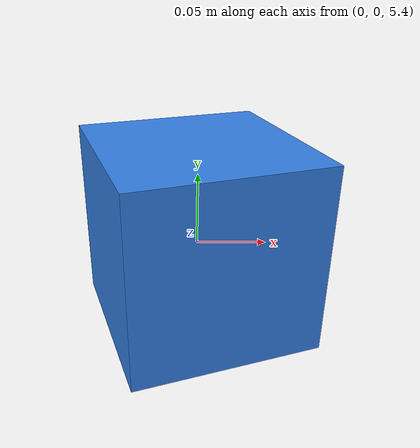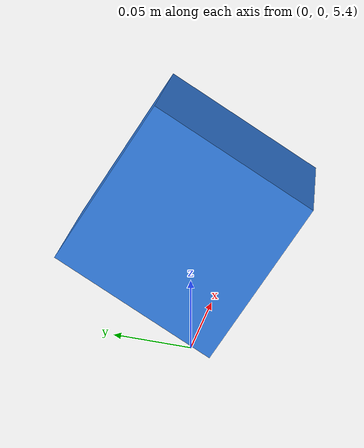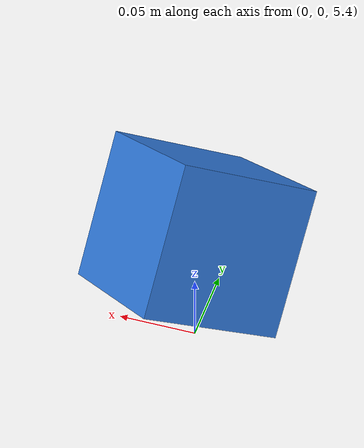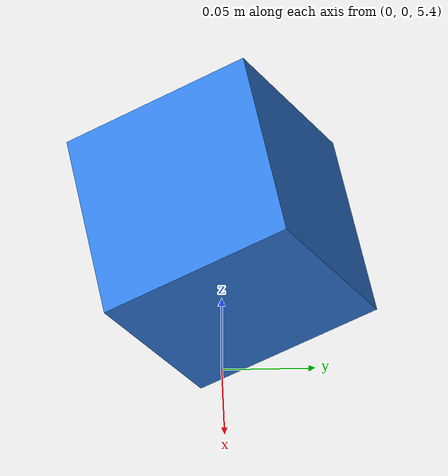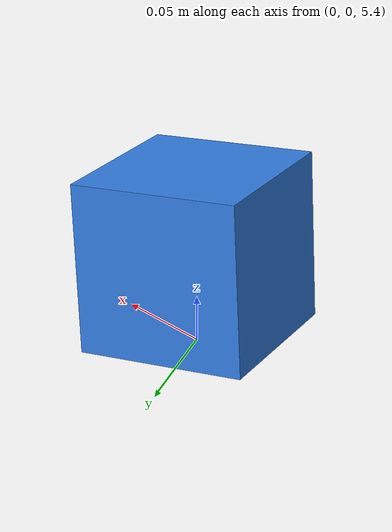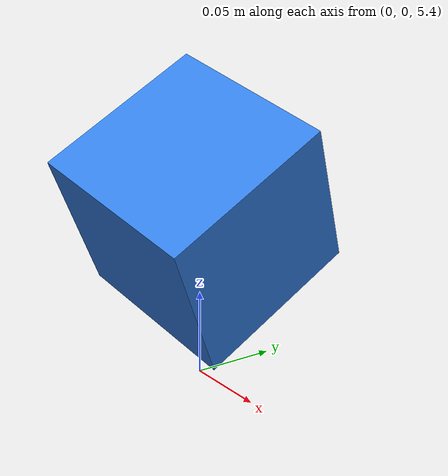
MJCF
<mujoco>
  <option timestep="0.0001348" gravity="0 0 -9.81"
          density="1.225" viscosity="1.5e-5" wind="10 0 0" integrator="implicit"/>

  <worldbody>
    <light diffuse="0.8 0.8 0.8" pos="0 0 3" dir="0 0 -1"/>

    <geom name="floor" type="plane" size="2 2 0.01"
          rgba="0.8 0.8 0.8 1" friction="0.22 0.005 0.0001"/>

    <body name="cube" pos="0 0 5.5" euler="30 20 0">
      <freejoint/>
      <geom name="cube_geom" type="box" size="0.0524 0.0524 0.0524"
            mass="0.37" rgba="0.2 0.5 0.9 1" friction="0.22 0.005 0.0001"
            fluidshape="ellipsoid" fluidcoef="1.0 0.5 0.5 0.5 0.5"/>
    </body>
  </worldbody>
</mujoco>
